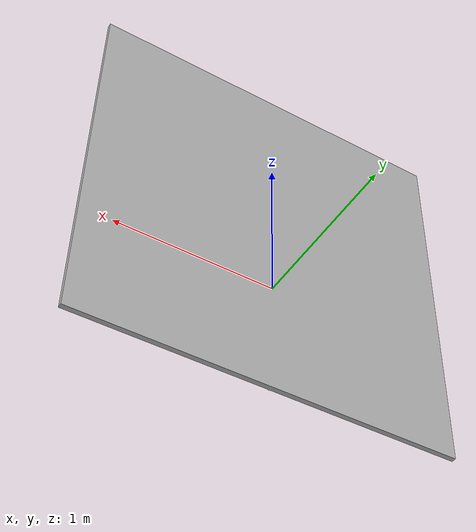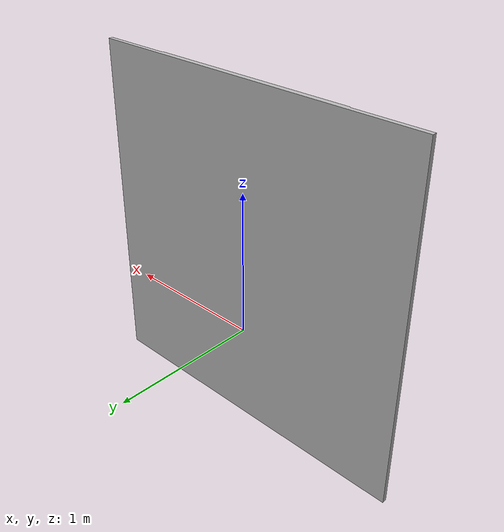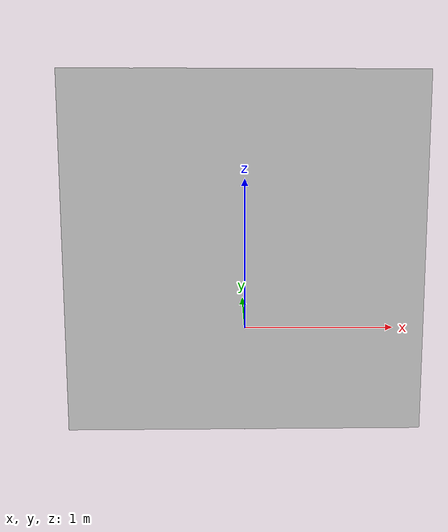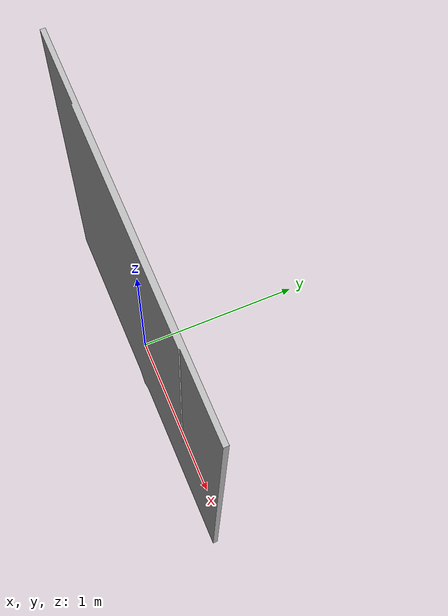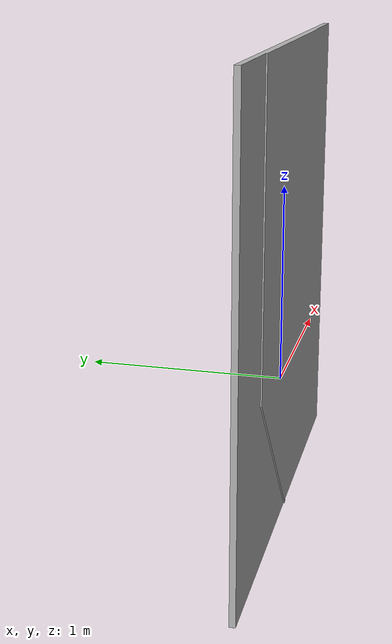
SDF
<?xml version="1.0" ?>
<sdf version="1.6">
    <model name="OFICIAL_PAN">
        <pose>0 0 0.5 0 0 0</pose>
        <static>true</static>
        <link name="link">
            <collision name="collision">
                <geometry>
                    <mesh>
                        <uri>model://OFICIAL_PAN/meshes/PAN_IR.obj</uri>
                        <scale>3 3 3</scale>
                    </mesh>
                </geometry>
            </collision>
            <visual name="visual">
                <geometry>
                    <mesh>
                        <uri>model://OFICIAL_PAN/meshes/PAN_IR.obj</uri>
                        <scale>3 3 3</scale>
                    </mesh>
                </geometry>
            </visual>
        </link>
    </model>
</sdf>
